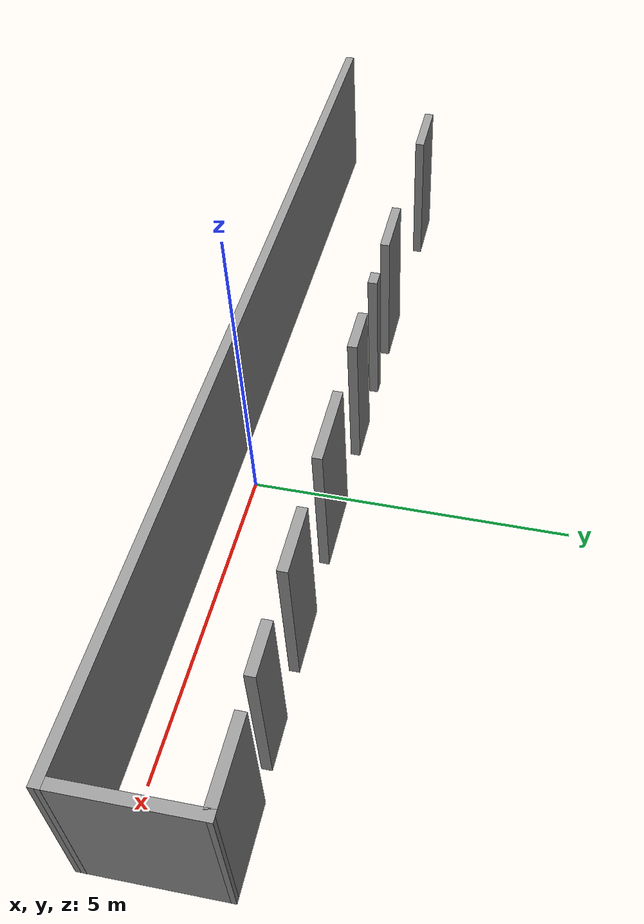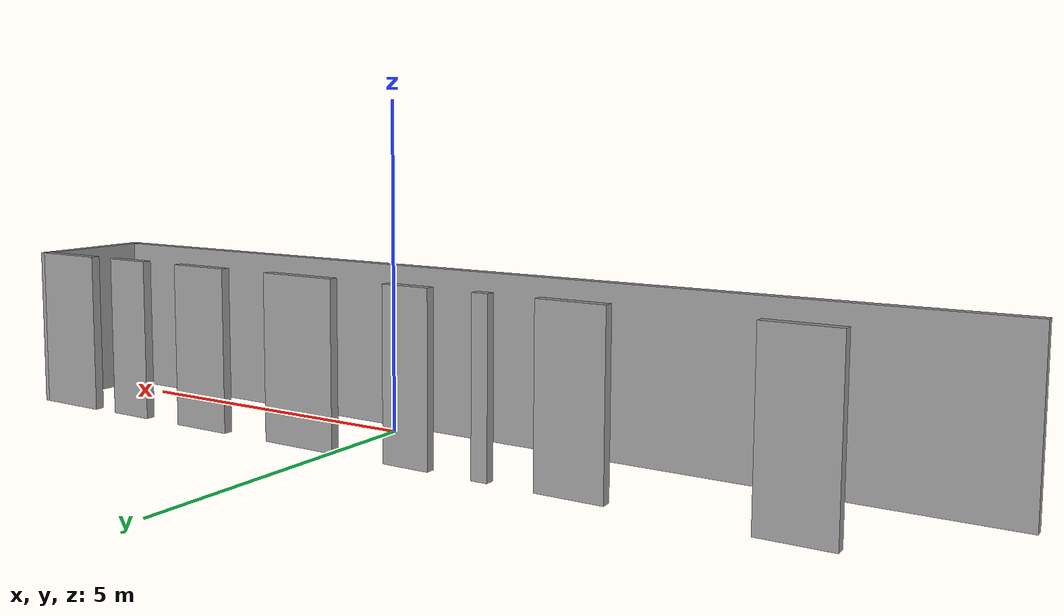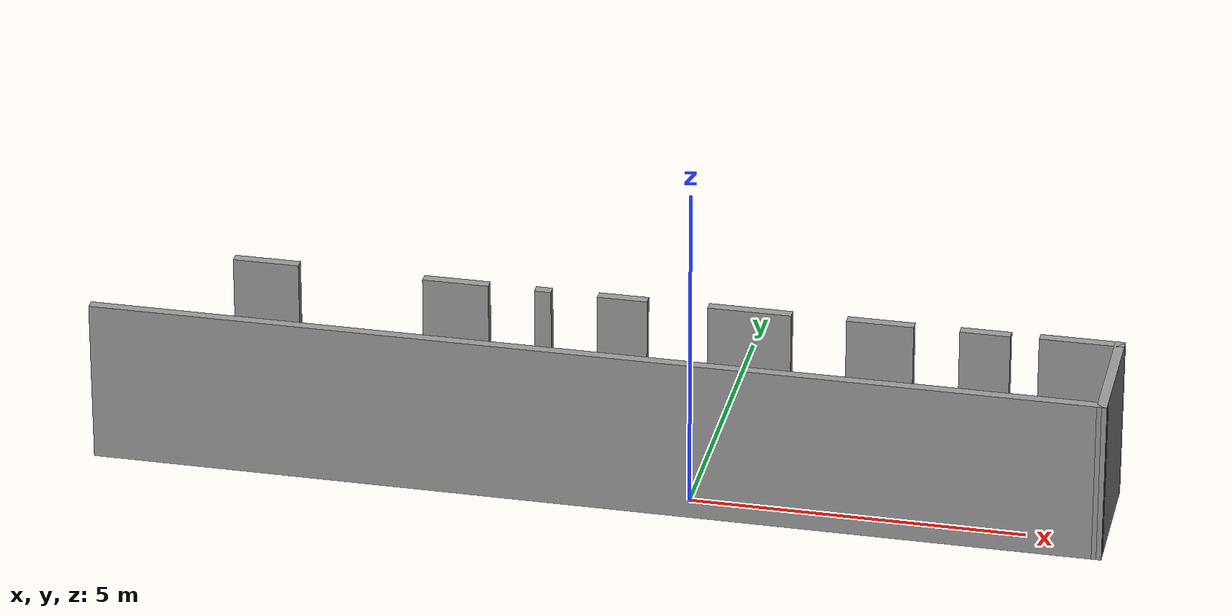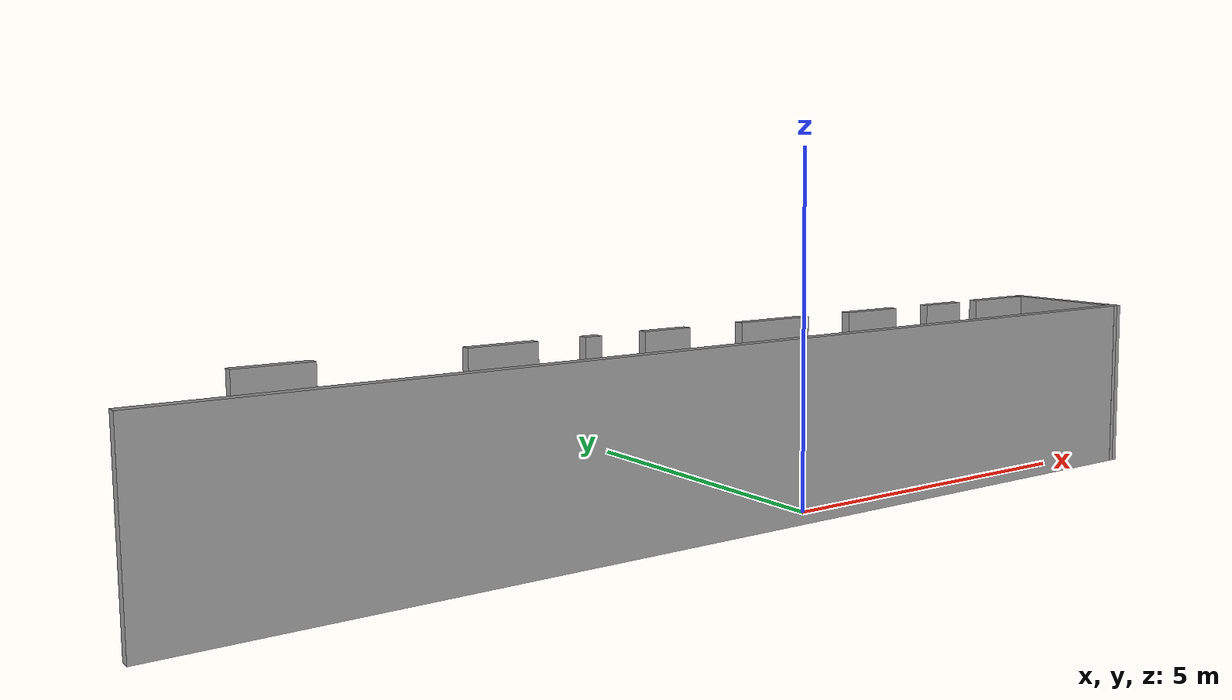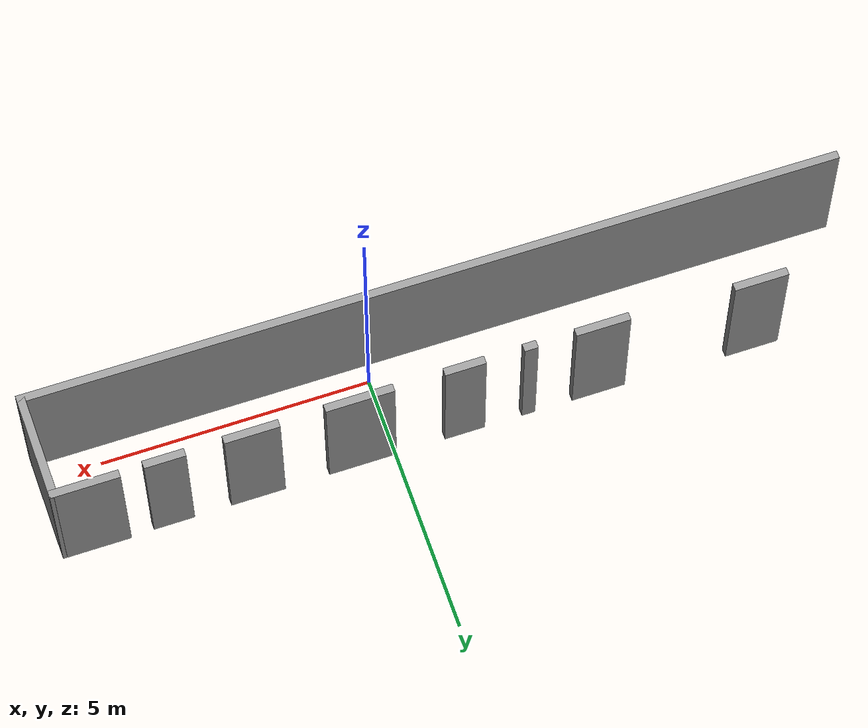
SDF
<?xml version='1.0'?>
<sdf version='1.6'>
  <model name='corridor'>
    <pose frame=''>-1.37384 0.534535 0 0 -0 0</pose>
    <link name='Wall_0'>
      <collision name='Wall_0_Collision'>
        <geometry>
          <box>
            <size>15.1075 0.15 2.5</size>
          </box>
        </geometry>
        <pose frame=''>0 0 1.25 0 -0 0</pose>
      </collision>
      <visual name='Wall_0_Visual'>
        <pose frame=''>0 0 1.25 0 -0 0</pose>
        <geometry>
          <box>
            <size>15.1075 0.15 2.5</size>
          </box>
        </geometry>
        <material>
          <script>
            <uri>file://media/materials/scripts/gazebo.material</uri>
            <name>Gazebo/Grey</name>
          </script>
          <ambient>1 1 1 1</ambient>
        </material>
        <meta>
          <layer>0</layer>
        </meta>
      </visual>
      <pose frame=''>-0.000431 -0.949688 0 0 -0 3.14033</pose>
    </link>
    <link name='Wall_26'>
      <collision name='Wall_26_Collision'>
        <geometry>
          <box>
            <size>0.75 0.15 2.5</size>
          </box>
        </geometry>
        <pose frame=''>0 0 1.25 0 -0 0</pose>
      </collision>
      <visual name='Wall_26_Visual'>
        <pose frame=''>0 0 1.25 0 -0 0</pose>
        <geometry>
          <box>
            <size>0.75 0.15 2.5</size>
          </box>
        </geometry>
        <material>
          <script>
            <uri>file://media/materials/scripts/gazebo.material</uri>
            <name>Gazebo/Grey</name>
          </script>
          <ambient>1 1 1 1</ambient>
        </material>
        <meta>
          <layer>0</layer>
        </meta>
      </visual>
      <pose frame=''>5.48456 0.916002 0 0 -0 3.14159</pose>
    </link>
    <link name='Wall_29'>
      <collision name='Wall_29_Collision'>
        <geometry>
          <box>
            <size>1 0.15 2.5</size>
          </box>
        </geometry>
        <pose frame=''>0 0 1.25 0 -0 0</pose>
      </collision>
      <visual name='Wall_29_Visual'>
        <pose frame=''>0 0 1.25 0 -0 0</pose>
        <geometry>
          <box>
            <size>1 0.15 2.5</size>
          </box>
        </geometry>
        <material>
          <script>
            <uri>file://media/materials/scripts/gazebo.material</uri>
            <name>Gazebo/Grey</name>
          </script>
          <ambient>1 1 1 1</ambient>
        </material>
        <meta>
          <layer>0</layer>
        </meta>
      </visual>
      <pose frame=''>3.92995 0.909814 0 0 -0 3.14159</pose>
    </link>
    <link name='Wall_31'>
      <collision name='Wall_31_Collision'>
        <geometry>
          <box>
            <size>1.25 0.15 2.5</size>
          </box>
        </geometry>
        <pose frame=''>0 0 1.25 0 -0 0</pose>
      </collision>
      <visual name='Wall_31_Visual'>
        <pose frame=''>0 0 1.25 0 -0 0</pose>
        <geometry>
          <box>
            <size>1.25 0.15 2.5</size>
          </box>
        </geometry>
        <material>
          <script>
            <uri>file://media/materials/scripts/gazebo.material</uri>
            <name>Gazebo/Grey</name>
          </script>
          <ambient>1 1 1 1</ambient>
        </material>
        <meta>
          <layer>0</layer>
        </meta>
      </visual>
      <pose frame=''>1.98545 0.897436 0 0 -0 3.14159</pose>
    </link>
    <link name='Wall_39'>
      <collision name='Wall_39_Collision'>
        <geometry>
          <box>
            <size>0.75 0.15 2.5</size>
          </box>
        </geometry>
        <pose frame=''>0 0 1.25 0 -0 0</pose>
      </collision>
      <visual name='Wall_39_Visual'>
        <pose frame=''>0 0 1.25 0 -0 0</pose>
        <geometry>
          <box>
            <size>0.75 0.15 2.5</size>
          </box>
        </geometry>
        <material>
          <script>
            <uri>file://media/materials/scripts/gazebo.material</uri>
            <name>Gazebo/Grey</name>
          </script>
          <ambient>1 1 1 1</ambient>
        </material>
        <meta>
          <layer>0</layer>
        </meta>
      </visual>
      <pose frame=''>0.075561 0.897436 0 0 -0 3.14159</pose>
    </link>
    <link name='Wall_4'>
      <collision name='Wall_4_Collision'>
        <geometry>
          <box>
            <size>1 0.15 2.5</size>
          </box>
        </geometry>
        <pose frame=''>0 0 1.25 0 -0 0</pose>
      </collision>
      <visual name='Wall_4_Visual'>
        <pose frame=''>0 0 1.25 0 -0 0</pose>
        <geometry>
          <box>
            <size>1 0.15 2.5</size>
          </box>
        </geometry>
        <material>
          <script>
            <uri>file://media/materials/scripts/gazebo.material</uri>
            <name>Gazebo/Grey</name>
          </script>
          <ambient>1 1 1 1</ambient>
        </material>
        <meta>
          <layer>0</layer>
        </meta>
      </visual>
      <pose frame=''>-2.44714 0.90396 0 0 -0 0</pose>
    </link>
    <link name='Wall_41'>
      <collision name='Wall_41_Collision'>
        <geometry>
          <box>
            <size>0.25 0.15 2.5</size>
          </box>
        </geometry>
        <pose frame=''>0 0 1.25 0 -0 0</pose>
      </collision>
      <visual name='Wall_41_Visual'>
        <pose frame=''>0 0 1.25 0 -0 0</pose>
        <geometry>
          <box>
            <size>0.25 0.15 2.5</size>
          </box>
        </geometry>
        <material>
          <script>
            <uri>file://media/materials/scripts/gazebo.material</uri>
            <name>Gazebo/Grey</name>
          </script>
          <ambient>1 1 1 1</ambient>
        </material>
        <meta>
          <layer>0</layer>
        </meta>
      </visual>
      <pose frame=''>-1.12262 0.897436 0 0 -0 3.14159</pose>
    </link>
    <link name='Wall_44'>
      <collision name='Wall_44_Collision'>
        <geometry>
          <box>
            <size>1.25 0.15 2.5</size>
          </box>
        </geometry>
        <pose frame=''>0 0 1.25 0 -0 0</pose>
      </collision>
      <visual name='Wall_44_Visual'>
        <pose frame=''>0 0 1.25 0 -0 0</pose>
        <geometry>
          <box>
            <size>1.25 0.15 2.5</size>
          </box>
        </geometry>
        <material>
          <script>
            <uri>file://media/materials/scripts/gazebo.material</uri>
            <name>Gazebo/Grey</name>
          </script>
          <ambient>1 1 1 1</ambient>
        </material>
        <meta>
          <layer>0</layer>
        </meta>
      </visual>
      <pose frame=''>6.90393 0.940758 0 0 -0 0</pose>
    </link>
    <link name='Wall_45'>
      <collision name='Wall_45_Collision'>
        <geometry>
          <box>
            <size>2.05001 0.15 2.5</size>
          </box>
        </geometry>
        <pose frame=''>0 0 1.25 0 -0 0</pose>
      </collision>
      <visual name='Wall_45_Visual'>
        <pose frame=''>0 0 1.25 0 -0 0</pose>
        <geometry>
          <box>
            <size>2.05001 0.15 2.5</size>
          </box>
        </geometry>
        <material>
          <script>
            <uri>file://media/materials/scripts/gazebo.material</uri>
            <name>Gazebo/Grey</name>
          </script>
          <ambient>1 1 1 1</ambient>
        </material>
        <meta>
          <layer>0</layer>
        </meta>
      </visual>
      <pose frame=''>7.46612 -0.009171 0 0 -0 -1.55796</pose>
    </link>
    <link name='Wall_8'>
      <collision name='Wall_8_Collision'>
        <geometry>
          <box>
            <size>1 0.15 2.5</size>
          </box>
        </geometry>
        <pose frame=''>0 0 1.25 0 -0 0</pose>
      </collision>
      <visual name='Wall_8_Visual'>
        <pose frame=''>0 0 1.25 0 -0 0</pose>
        <geometry>
          <box>
            <size>1 0.15 2.5</size>
          </box>
        </geometry>
        <material>
          <script>
            <uri>file://media/materials/scripts/gazebo.material</uri>
            <name>Gazebo/Grey</name>
          </script>
          <ambient>1 1 1 1</ambient>
        </material>
        <meta>
          <layer>0</layer>
        </meta>
      </visual>
      <pose frame=''>-5.35733 0.960056 0 0 -0 3.14159</pose>
    </link>
    <static>1</static>
  </model>
</sdf>
